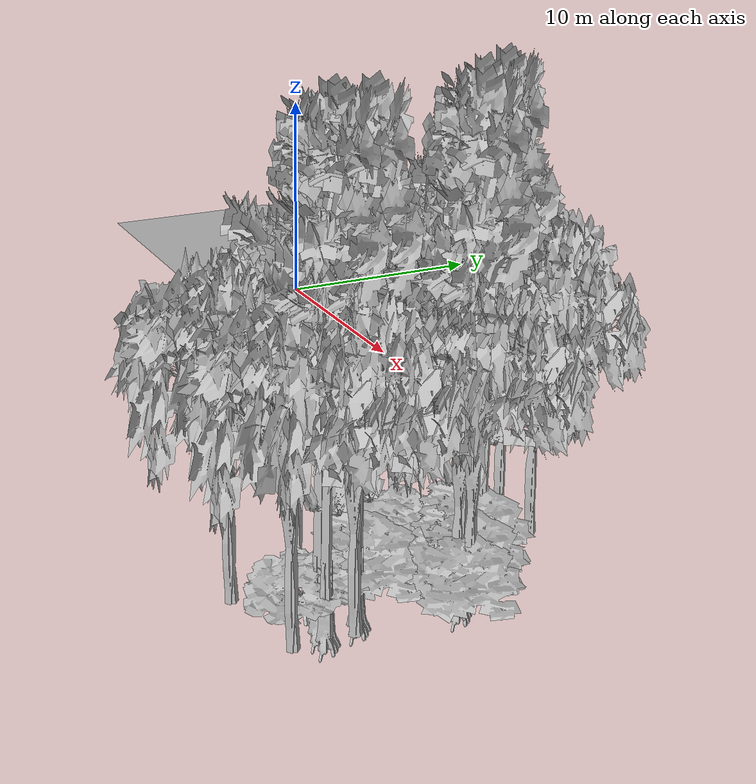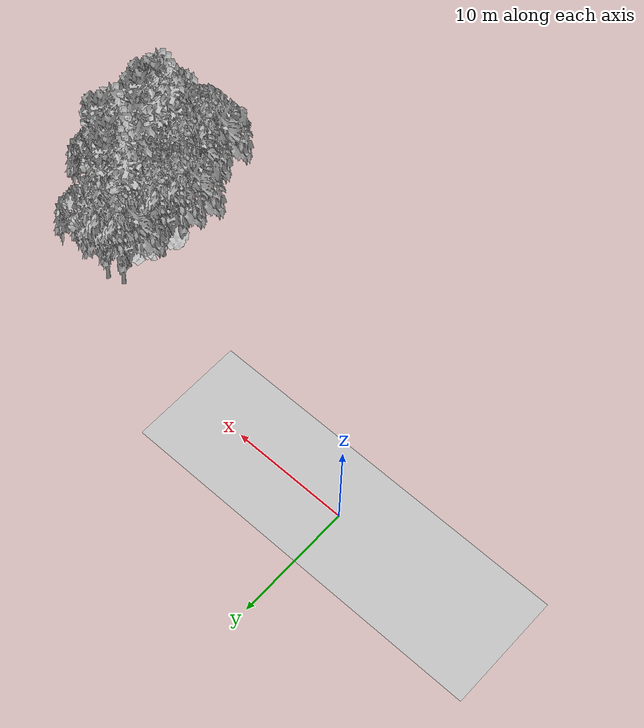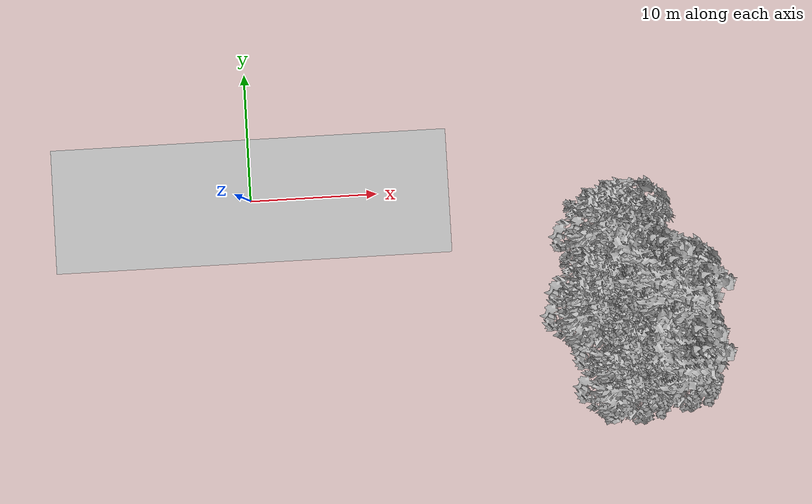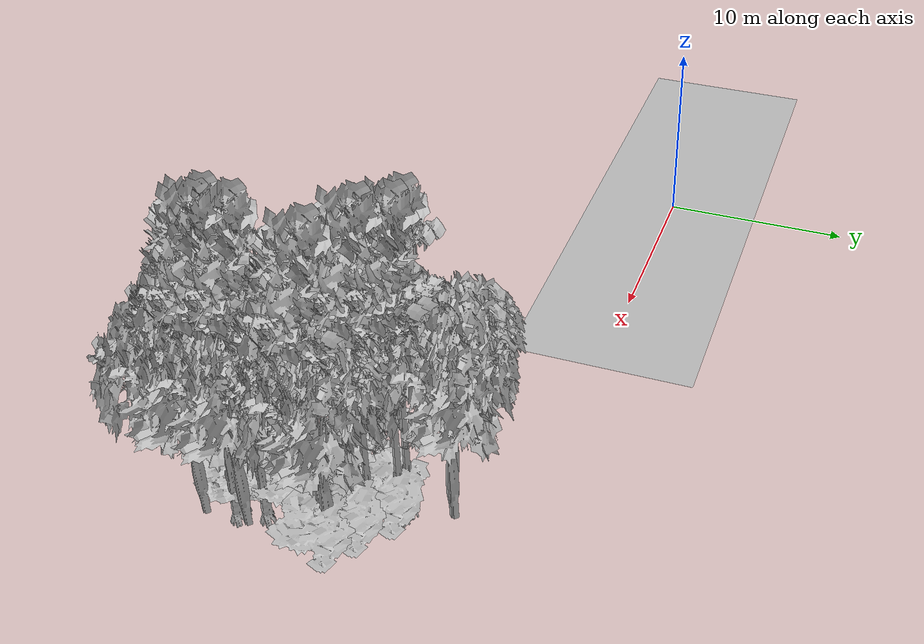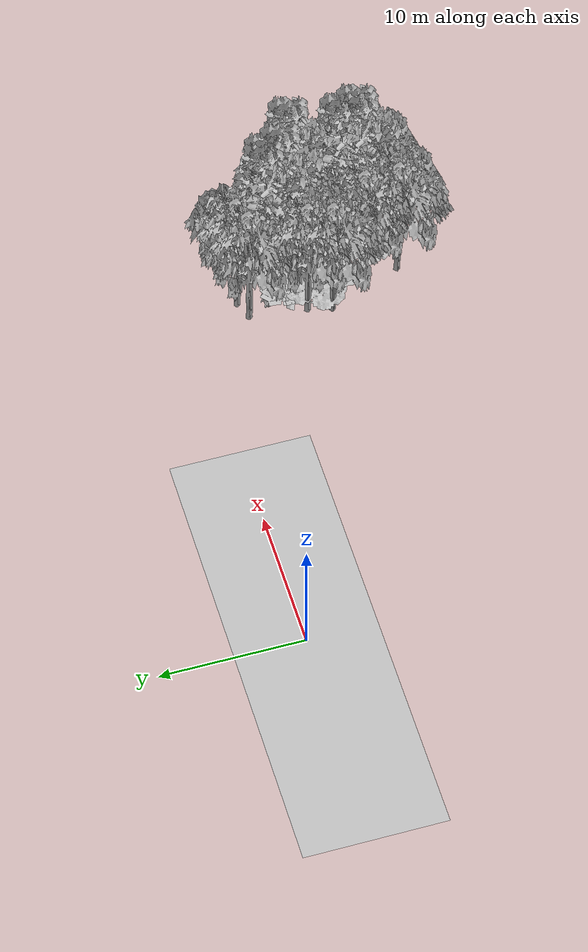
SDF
<sdf version="1.7">
 <world name="default">
  <model name="ground_plane">
   <static>1</static>
   <link name="link">
    <collision name="collision">
     <pose>-50 0 0 0 -0 0</pose>
     <geometry><plane><normal>0 0 1</normal><size>100 100</size></plane></geometry>
     <surface><contact><ode><min_depth>0.01</min_depth><max_vel>0</max_vel></ode></contact></surface>
    </collision>
    <visual name="grass">
     <cast_shadows>0</cast_shadows>
     <geometry>
      <mesh>
       <scale>0.5814285714285714 0.18142857142857144 0.1</scale>
       <uri>file://grass_plane/meshes/grass_plane.dae</uri>
      </mesh>
     </geometry>
    </visual>
   </link>
  </model>
  <model name="Tree 14">
   <static>1</static>
   <pose>29.20099575470026 -12.79384205445032 0 1.57079 -0 0</pose>
   <link name="link">
    <collision name="collision">
     <geometry><mesh><scale>4 2.5 4</scale><uri>model://tree_1/meshes/tree_1.obj</uri></mesh></geometry>
    </collision>
    <visual name="visual">
     <geometry><mesh><scale>4 2.5 4</scale><uri>model://tree_1/meshes/tree_1.obj</uri></mesh></geometry>
    </visual>
   </link>
  </model>
  <model name="Tree 26">
   <static>1</static>
   <pose>26.38132896985053 -8.619902670378695 0 1.57079 -0 0</pose>
   <link name="link">
    <collision name="collision">
     <geometry><mesh><scale>4 2.5 4</scale><uri>model://tree_1/meshes/tree_1.obj</uri></mesh></geometry>
    </collision>
    <visual name="visual">
     <geometry><mesh><scale>4 2.5 4</scale><uri>model://tree_1/meshes/tree_1.obj</uri></mesh></geometry>
    </visual>
   </link>
  </model>
  <model name="Tree 40">
   <static>1</static>
   <pose>30.688549628434487 -7.968085301696398 0 1.57079 -0 0</pose>
   <link name="link">
    <collision name="collision">
     <geometry><mesh><scale>3.5 5 3.5</scale><uri>model://tree_9/meshes/tree_9.obj</uri></mesh></geometry>
    </collision>
    <visual name="visual">
     <geometry><mesh><scale>3.5 5 3.5</scale><uri>model://tree_9/meshes/tree_9.obj</uri></mesh></geometry>
    </visual>
   </link>
  </model>
  <model name="Tree 58">
   <static>1</static>
   <pose>30.605129826127268 -8.04232738240028 0 1.57079 -0 0</pose>
   <link name="link">
    <collision name="collision">
     <geometry><mesh><scale>3.5 5 3.5</scale><uri>model://tree_2/meshes/tree_2.obj</uri></mesh></geometry>
    </collision>
    <visual name="visual">
     <geometry><mesh><scale>3.5 5 3.5</scale><uri>model://tree_2/meshes/tree_2.obj</uri></mesh></geometry>
    </visual>
   </link>
  </model>
  <model name="Tree 69">
   <static>1</static>
   <pose>25.287389897321887 -9.418051264039672 0 1.57079 -0 0</pose>
   <link name="link">
    <collision name="collision">
     <geometry><mesh><scale>3.5 5 3.5</scale><uri>model://tree_2/meshes/tree_2.obj</uri></mesh></geometry>
    </collision>
    <visual name="visual">
     <geometry><mesh><scale>3.5 5 3.5</scale><uri>model://tree_2/meshes/tree_2.obj</uri></mesh></geometry>
    </visual>
   </link>
  </model>
  <model name="Tree 128">
   <static>1</static>
   <pose>30.79365734551814 -11.833518962760973 0 1.57079 -0 0</pose>
   <link name="link">
    <collision name="collision">
     <geometry><mesh><scale>3.5 5 3.5</scale><uri>model://tree_2/meshes/tree_2.obj</uri></mesh></geometry>
    </collision>
    <visual name="visual">
     <geometry><mesh><scale>3.5 5 3.5</scale><uri>model://tree_2/meshes/tree_2.obj</uri></mesh></geometry>
    </visual>
   </link>
  </model>
  <model name="Tree 137">
   <static>1</static>
   <pose>28.14259154742993 -5.6017838124814965 0 1.57079 -0 0</pose>
   <link name="link">
    <collision name="collision">
     <geometry><mesh><scale>3.5 5 3.5</scale><uri>model://tree_9/meshes/tree_9.obj</uri></mesh></geometry>
    </collision>
    <visual name="visual">
     <geometry><mesh><scale>3.5 5 3.5</scale><uri>model://tree_9/meshes/tree_9.obj</uri></mesh></geometry>
    </visual>
   </link>
  </model>
  <model name="Tree 214">
   <static>1</static>
   <pose>30.440304793333084 -12.616544074018387 0 1.57079 -0 0</pose>
   <link name="link">
    <collision name="collision">
     <geometry><mesh><scale>3.5 5 3.5</scale><uri>model://tree_9/meshes/tree_9.obj</uri></mesh></geometry>
    </collision>
    <visual name="visual">
     <geometry><mesh><scale>3.5 5 3.5</scale><uri>model://tree_9/meshes/tree_9.obj</uri></mesh></geometry>
    </visual>
   </link>
  </model>
  <model name="Tree 235">
   <static>1</static>
   <pose>30.0360590151801 -11.337113434527987 0 1.57079 -0 0</pose>
   <link name="link">
    <collision name="collision">
     <geometry><mesh><scale>3.5 5 3.5</scale><uri>model://tree_9/meshes/tree_9.obj</uri></mesh></geometry>
    </collision>
    <visual name="visual">
     <geometry><mesh><scale>3.5 5 3.5</scale><uri>model://tree_9/meshes/tree_9.obj</uri></mesh></geometry>
    </visual>
   </link>
  </model>
  <model name="Tree 238">
   <static>1</static>
   <pose>26.21412148301475 -3.7606381350038234 0 1.57079 -0 0</pose>
   <link name="link">
    <collision name="collision">
     <geometry><mesh><scale>3.5 5 3.5</scale><uri>model://tree_2/meshes/tree_2.obj</uri></mesh></geometry>
    </collision>
    <visual name="visual">
     <geometry><mesh><scale>3.5 5 3.5</scale><uri>model://tree_2/meshes/tree_2.obj</uri></mesh></geometry>
    </visual>
   </link>
  </model>
  <model name="Tree 289">
   <static>1</static>
   <pose>30.824203980064198 -7.706449232430213 0 1.57079 -0 0</pose>
   <link name="link">
    <collision name="collision">
     <geometry><mesh><scale>3.5 5 3.5</scale><uri>model://tree_2/meshes/tree_2.obj</uri></mesh></geometry>
    </collision>
    <visual name="visual">
     <geometry><mesh><scale>3.5 5 3.5</scale><uri>model://tree_2/meshes/tree_2.obj</uri></mesh></geometry>
    </visual>
   </link>
  </model>
  <model name="Tree 297">
   <static>1</static>
   <pose>28.72192166997678 -6.846514892172184 0 1.57079 -0 0</pose>
   <link name="link">
    <collision name="collision">
     <geometry><mesh><scale>3.5 5 3.5</scale><uri>model://tree_9/meshes/tree_9.obj</uri></mesh></geometry>
    </collision>
    <visual name="visual">
     <geometry><mesh><scale>3.5 5 3.5</scale><uri>model://tree_9/meshes/tree_9.obj</uri></mesh></geometry>
    </visual>
   </link>
  </model>
  <model name="Tree 323">
   <static>1</static>
   <pose>27.600553983790164 -5.403976051688751 0 1.57079 -0 0</pose>
   <link name="link">
    <collision name="collision">
     <geometry><mesh><scale>3.5 5 3.5</scale><uri>model://tree_9/meshes/tree_9.obj</uri></mesh></geometry>
    </collision>
    <visual name="visual">
     <geometry><mesh><scale>3.5 5 3.5</scale><uri>model://tree_9/meshes/tree_9.obj</uri></mesh></geometry>
    </visual>
   </link>
  </model>
  <model name="Tree 331">
   <static>1</static>
   <pose>29.911696923068533 -12.639988668841685 0 1.57079 -0 0</pose>
   <link name="link">
    <collision name="collision">
     <geometry><mesh><scale>3.5 5 3.5</scale><uri>model://tree_9/meshes/tree_9.obj</uri></mesh></geometry>
    </collision>
    <visual name="visual">
     <geometry><mesh><scale>3.5 5 3.5</scale><uri>model://tree_9/meshes/tree_9.obj</uri></mesh></geometry>
    </visual>
   </link>
  </model>
  <model name="Tree 334">
   <static>1</static>
   <pose>25.700497388082695 -7.770706455142522 0 1.57079 -0 0</pose>
   <link name="link">
    <collision name="collision">
     <geometry><mesh><scale>3.5 5 3.5</scale><uri>model://tree_2/meshes/tree_2.obj</uri></mesh></geometry>
    </collision>
    <visual name="visual">
     <geometry><mesh><scale>3.5 5 3.5</scale><uri>model://tree_2/meshes/tree_2.obj</uri></mesh></geometry>
    </visual>
   </link>
  </model>
  <model name="Tree 336">
   <static>1</static>
   <pose>28.568281348311103 -10.569332730847506 0 1.57079 -0 0</pose>
   <link name="link">
    <collision name="collision">
     <geometry><mesh><scale>3 2 3</scale><uri>model://tree_3/meshes/tree_3.obj</uri></mesh></geometry>
    </collision>
    <visual name="visual">
     <geometry><mesh><scale>3 2 3</scale><uri>model://tree_3/meshes/tree_3.obj</uri></mesh></geometry>
    </visual>
   </link>
  </model>
  <model name="Tree 341">
   <static>1</static>
   <pose>30.7449916276189 -8.399084684699018 0 1.57079 -0 0</pose>
   <link name="link">
    <collision name="collision">
     <geometry><mesh><scale>3 2 3</scale><uri>model://tree_3/meshes/tree_3.obj</uri></mesh></geometry>
    </collision>
    <visual name="visual">
     <geometry><mesh><scale>3 2 3</scale><uri>model://tree_3/meshes/tree_3.obj</uri></mesh></geometry>
    </visual>
   </link>
  </model>
  <model name="Tree 367">
   <static>1</static>
   <pose>28.110889569655967 -6.359335356785694 0 1.57079 -0 0</pose>
   <link name="link">
    <collision name="collision">
     <geometry><mesh><scale>3 2 3</scale><uri>model://tree_3/meshes/tree_3.obj</uri></mesh></geometry>
    </collision>
    <visual name="visual">
     <geometry><mesh><scale>3 2 3</scale><uri>model://tree_3/meshes/tree_3.obj</uri></mesh></geometry>
    </visual>
   </link>
  </model>
  <model name="Tree 376">
   <static>1</static>
   <pose>27.350900170762657 -12.277519296558662 0 1.57079 -0 0</pose>
   <link name="link">
    <collision name="collision">
     <geometry><mesh><scale>3.5 5 3.5</scale><uri>model://tree_2/meshes/tree_2.obj</uri></mesh></geometry>
    </collision>
    <visual name="visual">
     <geometry><mesh><scale>3.5 5 3.5</scale><uri>model://tree_2/meshes/tree_2.obj</uri></mesh></geometry>
    </visual>
   </link>
  </model>
  <model name="Tree 401">
   <static>1</static>
   <pose>29.567695556715506 -7.490119893656414 0 1.57079 -0 0</pose>
   <link name="link">
    <collision name="collision">
     <geometry><mesh><scale>3 2 3</scale><uri>model://tree_3/meshes/tree_3.obj</uri></mesh></geometry>
    </collision>
    <visual name="visual">
     <geometry><mesh><scale>3 2 3</scale><uri>model://tree_3/meshes/tree_3.obj</uri></mesh></geometry>
    </visual>
   </link>
  </model>
  <model name="Tree 444">
   <static>1</static>
   <pose>30.753128632034517 -13.963825358405298 0 1.57079 -0 0</pose>
   <link name="link">
    <collision name="collision">
     <geometry><mesh><scale>3.5 5 3.5</scale><uri>model://tree_2/meshes/tree_2.obj</uri></mesh></geometry>
    </collision>
    <visual name="visual">
     <geometry><mesh><scale>3.5 5 3.5</scale><uri>model://tree_2/meshes/tree_2.obj</uri></mesh></geometry>
    </visual>
   </link>
  </model>
  <model name="Tree 511">
   <static>1</static>
   <pose>27.48939601927458 -3.2744672576658793 0 1.57079 -0 0</pose>
   <link name="link">
    <collision name="collision">
     <geometry><mesh><scale>3.5 5 3.5</scale><uri>model://tree_2/meshes/tree_2.obj</uri></mesh></geometry>
    </collision>
    <visual name="visual">
     <geometry><mesh><scale>3.5 5 3.5</scale><uri>model://tree_2/meshes/tree_2.obj</uri></mesh></geometry>
    </visual>
   </link>
  </model>
  <model name="Tree 513">
   <static>1</static>
   <pose>27.352269472005204 -14.651336045164832 0 1.57079 -0 0</pose>
   <link name="link">
    <collision name="collision">
     <geometry><mesh><scale>3.5 5 3.5</scale><uri>model://tree_2/meshes/tree_2.obj</uri></mesh></geometry>
    </collision>
    <visual name="visual">
     <geometry><mesh><scale>3.5 5 3.5</scale><uri>model://tree_2/meshes/tree_2.obj</uri></mesh></geometry>
    </visual>
   </link>
  </model>
 </world>
</sdf>
